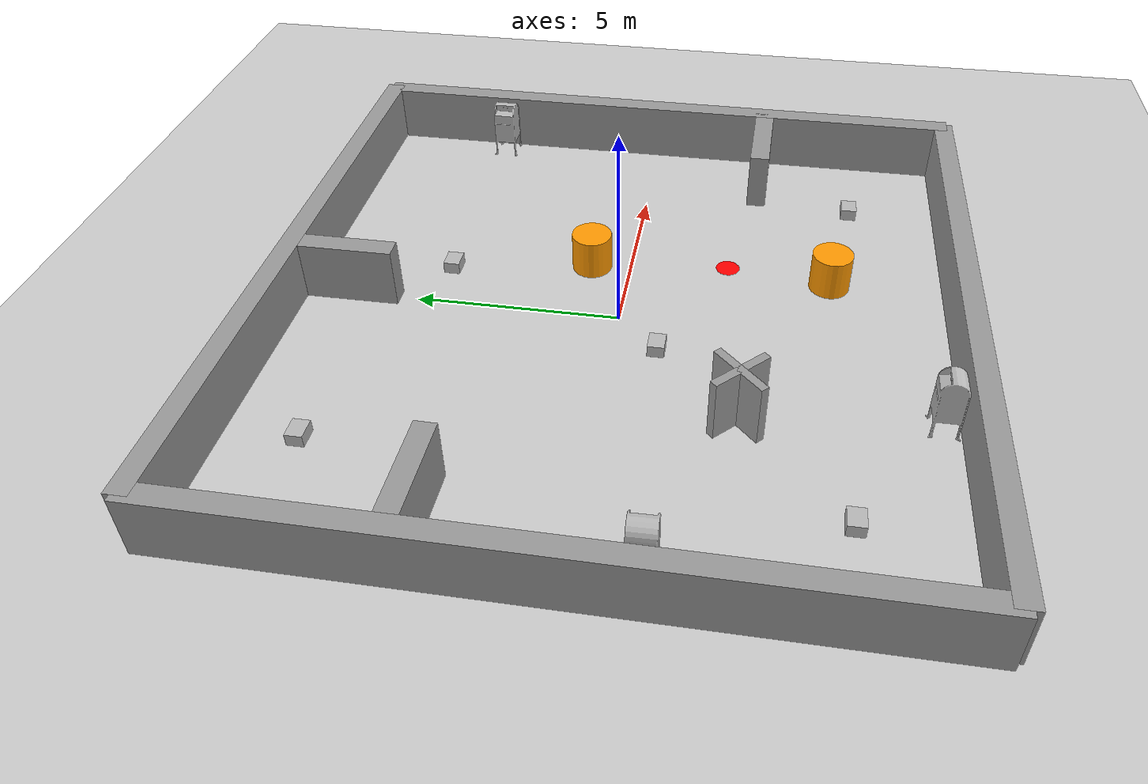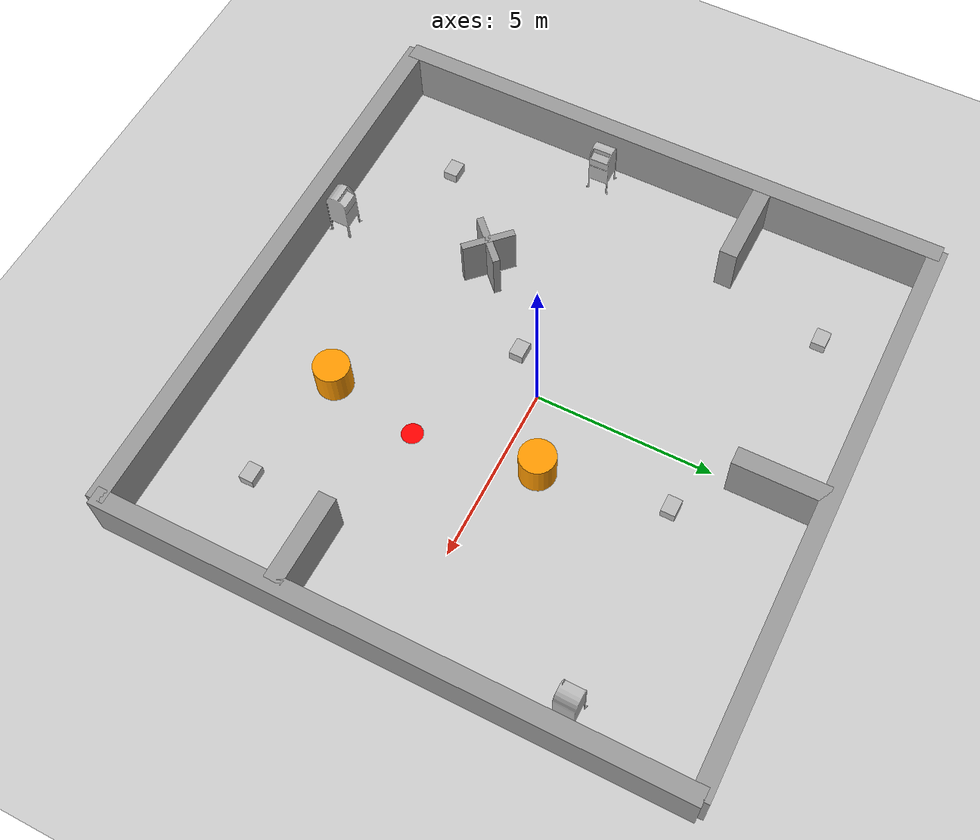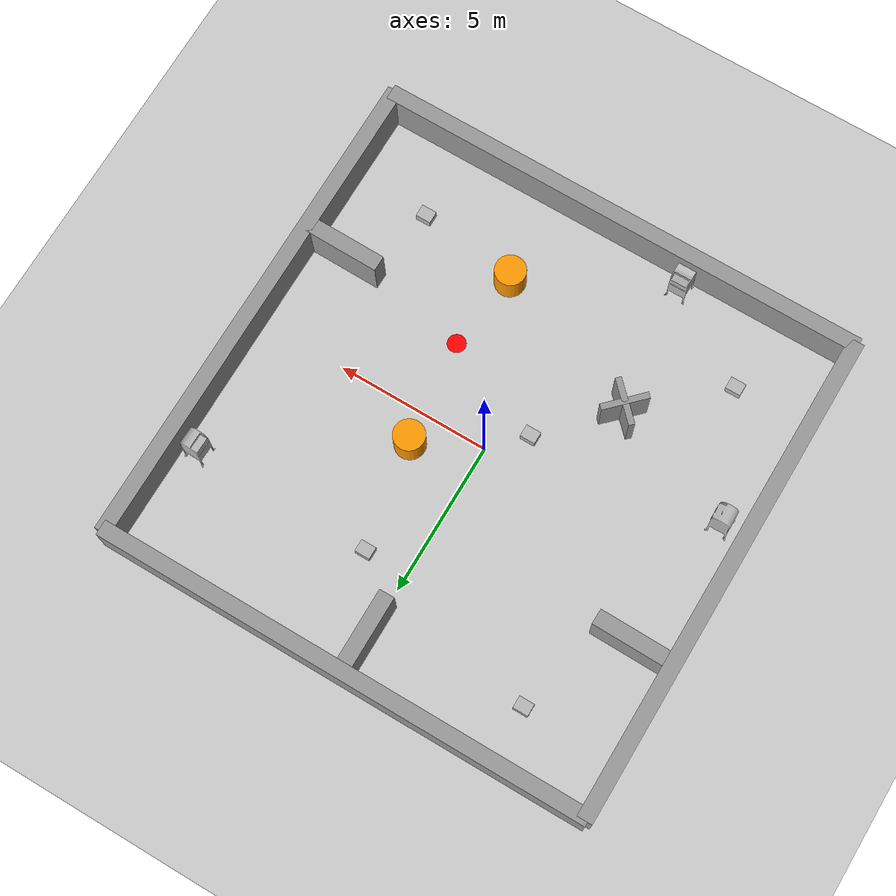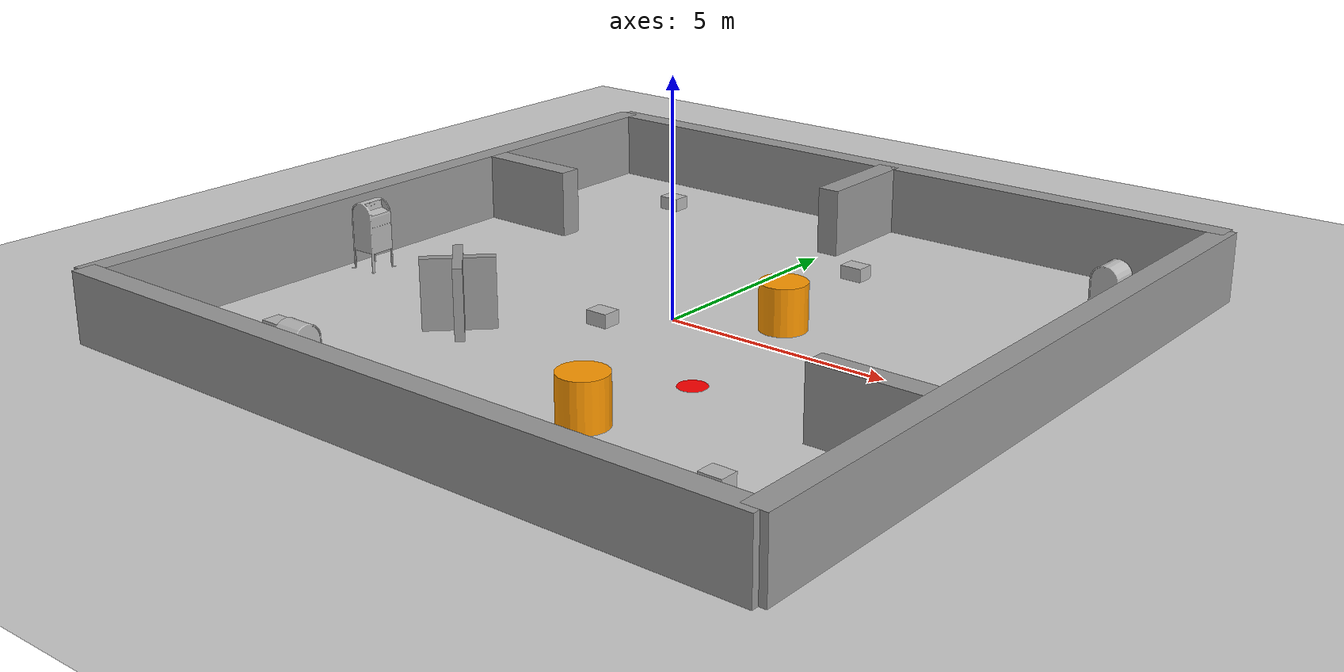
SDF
<sdf version="1.7">
 <world name="default">
  <light name="sun" type="directional">
   <pose>0 0 10 0 -0 0</pose>
   <diffuse>0.8 0.8 0.8 1</diffuse>
   <specular>0.2 0.2 0.2 1</specular>
   <attenuation>
    <range>1000</range>
    <constant>0.9</constant>
    <linear>0.01</linear>
    <quadratic>0.001</quadratic>
   </attenuation>
   <direction>-0.5 0.1 -0.9</direction>
   <spot><inner_angle>0</inner_angle><outer_angle>0</outer_angle><falloff>0</falloff></spot>
  </light>
  <model name="ground_plane">
   <static>1</static>
   <link name="link">
    <collision name="collision">
     <geometry><plane><normal>0 0 1</normal><size>100 100</size></plane></geometry>
     <surface>
      <contact><collide_bitmask>65535</collide_bitmask></contact>
      <friction><ode><mu>100</mu><mu2>50</mu2></ode></friction>
     </surface>
    </collision>
    <visual name="visual">
     <cast_shadows>0</cast_shadows>
     <geometry><plane><normal>0 0 1</normal><size>100 100</size></plane></geometry>
     <material>
      <script><uri>file://media/materials/scripts/gazebo.material</uri><name>Gazebo/Grey</name></script>
     </material>
    </visual>
   </link>
  </model>
  <gravity>0 0 -9.8</gravity>
  <magnetic_field>6e-06 2.3e-05 -4.2e-05</magnetic_field>
  <atmosphere type="adiabatic"/>
  <physics type="ode">
   <max_step_size>0.001</max_step_size>
   <real_time_factor>1</real_time_factor>
   <real_time_update_rate>10000</real_time_update_rate>
  </physics>
  <scene><ambient>0.4 0.4 0.4 1</ambient><background>0.7 0.7 0.7 1</background><shadows>1</shadows></scene>
  <spherical_coordinates>
   <surface_model>EARTH_WGS84</surface_model>
   <latitude_deg>0</latitude_deg>
   <longitude_deg>0</longitude_deg>
   <elevation>0</elevation>
   <heading_deg>0</heading_deg>
  </spherical_coordinates>
  <model name="cardboard_box_0">
   <link name="link">
    <inertial>
     <mass>2</mass>
     <inertia>
      <ixx>0.0416667</ixx>
      <ixy>0</ixy>
      <ixz>0</ixz>
      <iyy>0.0566667</iyy>
      <iyz>0</iyz>
      <izz>0.0683333</izz>
     </inertia>
    </inertial>
    <visual name="visual">
     <pose>0 0 -0.15 0 -0 0</pose>
     <geometry>
      <mesh><uri>model://cardboard_box/meshes/cardboard_box.dae</uri><scale>1.25932 1.00745 0.755591</scale></mesh>
     </geometry>
     <material><shader type="pixel"><normal_map>__default__</normal_map></shader></material>
    </visual>
    <collision name="collision">
     <geometry><box><size>0.5 0.4 0.3</size></box></geometry>
     <surface>
      <friction>
       <ode><mu>1</mu><mu2>1</mu2><fdir1>0 0 0</fdir1><slip1>0</slip1><slip2>0</slip2></ode>
       <torsional>
        <coefficient>1</coefficient>
        <patch_radius>0</patch_radius>
        <surface_radius>0</surface_radius>
        <use_patch_radius>1</use_patch_radius>
        <ode><slip>0</slip></ode>
       </torsional>
      </friction>
      <bounce><restitution_coefficient>0</restitution_coefficient><threshold>1e+06</threshold></bounce>
      <contact>
       <collide_without_contact>0</collide_without_contact>
       <collide_without_contact_bitmask>1</collide_without_contact_bitmask>
       <collide_bitmask>1</collide_bitmask>
       <ode>
        <soft_cfm>0</soft_cfm>
        <soft_erp>0.2</soft_erp>
        <kp>1e+07</kp>
        <kd>1</kd>
        <max_vel>0.1</max_vel>
        <min_depth>0.001</min_depth>
       </ode>
       <bullet>
        <split_impulse>1</split_impulse>
        <split_impulse_penetration_threshold>-0.01</split_impulse_penetration_threshold>
        <soft_cfm>0</soft_cfm>
        <soft_erp>0.2</soft_erp>
        <kp>1e+07</kp>
        <kd>1</kd>
       </bullet>
      </contact>
     </surface>
    </collision>
   </link>
   <static>0</static>
   <pose>-5.5252 -5.46607 0.149 0 -0 0</pose>
  </model>
  <model name="cardboard_box_1">
   <link name="link">
    <inertial>
     <mass>2</mass>
     <inertia>
      <ixx>0.0416667</ixx>
      <ixy>0</ixy>
      <ixz>0</ixz>
      <iyy>0.0566667</iyy>
      <iyz>0</iyz>
      <izz>0.0683333</izz>
     </inertia>
    </inertial>
    <visual name="visual">
     <pose>0 0 -0.15 0 -0 0</pose>
     <geometry>
      <mesh><uri>model://cardboard_box/meshes/cardboard_box.dae</uri><scale>1.25932 1.00745 0.755591</scale></mesh>
     </geometry>
     <material><shader type="pixel"><normal_map>__default__</normal_map></shader></material>
    </visual>
    <collision name="collision">
     <geometry><box><size>0.5 0.4 0.3</size></box></geometry>
     <surface>
      <friction>
       <ode><mu>1</mu><mu2>1</mu2><fdir1>0 0 0</fdir1><slip1>0</slip1><slip2>0</slip2></ode>
       <torsional>
        <coefficient>1</coefficient>
        <patch_radius>0</patch_radius>
        <surface_radius>0</surface_radius>
        <use_patch_radius>1</use_patch_radius>
        <ode><slip>0</slip></ode>
       </torsional>
      </friction>
      <bounce><restitution_coefficient>0</restitution_coefficient><threshold>1e+06</threshold></bounce>
      <contact>
       <collide_without_contact>0</collide_without_contact>
       <collide_without_contact_bitmask>1</collide_without_contact_bitmask>
       <collide_bitmask>1</collide_bitmask>
       <ode>
        <soft_cfm>0</soft_cfm>
        <soft_erp>0.2</soft_erp>
        <kp>1e+07</kp>
        <kd>1</kd>
        <max_vel>0.1</max_vel>
        <min_depth>0.001</min_depth>
       </ode>
       <bullet>
        <split_impulse>1</split_impulse>
        <split_impulse_penetration_threshold>-0.01</split_impulse_penetration_threshold>
        <soft_cfm>0</soft_cfm>
        <soft_erp>0.2</soft_erp>
        <kp>1e+07</kp>
        <kd>1</kd>
       </bullet>
      </contact>
     </surface>
    </collision>
   </link>
   <static>0</static>
   <pose>-4.89749 6.07593 0.149 0 -0 0</pose>
  </model>
  <model name="cardboard_box_2">
   <link name="link">
    <inertial>
     <mass>2</mass>
     <inertia>
      <ixx>0.0416667</ixx>
      <ixy>0</ixy>
      <ixz>0</ixz>
      <iyy>0.0566667</iyy>
      <iyz>0</iyz>
      <izz>0.0683333</izz>
     </inertia>
    </inertial>
    <visual name="visual">
     <pose>0 0 -0.15 0 -0 0</pose>
     <geometry>
      <mesh><uri>model://cardboard_box/meshes/cardboard_box.dae</uri><scale>1.25932 1.00745 0.755591</scale></mesh>
     </geometry>
     <material><shader type="pixel"><normal_map>__default__</normal_map></shader></material>
    </visual>
    <collision name="collision">
     <geometry><box><size>0.5 0.4 0.3</size></box></geometry>
     <surface>
      <friction>
       <ode><mu>1</mu><mu2>1</mu2><fdir1>0 0 0</fdir1><slip1>0</slip1><slip2>0</slip2></ode>
       <torsional>
        <coefficient>1</coefficient>
        <patch_radius>0</patch_radius>
        <surface_radius>0</surface_radius>
        <use_patch_radius>1</use_patch_radius>
        <ode><slip>0</slip></ode>
       </torsional>
      </friction>
      <bounce><restitution_coefficient>0</restitution_coefficient><threshold>1e+06</threshold></bounce>
      <contact>
       <collide_without_contact>0</collide_without_contact>
       <collide_without_contact_bitmask>1</collide_without_contact_bitmask>
       <collide_bitmask>1</collide_bitmask>
       <ode>
        <soft_cfm>0</soft_cfm>
        <soft_erp>0.2</soft_erp>
        <kp>1e+07</kp>
        <kd>1</kd>
        <max_vel>0.1</max_vel>
        <min_depth>0.001</min_depth>
       </ode>
       <bullet>
        <split_impulse>1</split_impulse>
        <split_impulse_penetration_threshold>-0.01</split_impulse_penetration_threshold>
        <soft_cfm>0</soft_cfm>
        <soft_erp>0.2</soft_erp>
        <kp>1e+07</kp>
        <kd>1</kd>
       </bullet>
      </contact>
     </surface>
    </collision>
   </link>
   <static>0</static>
   <pose>1.41387 4.4783 0.149 0 -0 0</pose>
  </model>
  <model name="cardboard_box_3">
   <link name="link">
    <inertial>
     <mass>2</mass>
     <inertia>
      <ixx>0.0416667</ixx>
      <ixy>0</ixy>
      <ixz>0</ixz>
      <iyy>0.0566667</iyy>
      <iyz>0</iyz>
      <izz>0.0683333</izz>
     </inertia>
    </inertial>
    <visual name="visual">
     <pose>0 0 -0.15 0 -0 0</pose>
     <geometry>
      <mesh><uri>model://cardboard_box/meshes/cardboard_box.dae</uri><scale>1.25932 1.00745 0.755591</scale></mesh>
     </geometry>
     <material><shader type="pixel"><normal_map>__default__</normal_map></shader></material>
    </visual>
    <collision name="collision">
     <geometry><box><size>0.5 0.4 0.3</size></box></geometry>
     <surface>
      <friction>
       <ode><mu>1</mu><mu2>1</mu2><fdir1>0 0 0</fdir1><slip1>0</slip1><slip2>0</slip2></ode>
       <torsional>
        <coefficient>1</coefficient>
        <patch_radius>0</patch_radius>
        <surface_radius>0</surface_radius>
        <use_patch_radius>1</use_patch_radius>
        <ode><slip>0</slip></ode>
       </torsional>
      </friction>
      <bounce><restitution_coefficient>0</restitution_coefficient><threshold>1e+06</threshold></bounce>
      <contact>
       <collide_without_contact>0</collide_without_contact>
       <collide_without_contact_bitmask>1</collide_without_contact_bitmask>
       <collide_bitmask>1</collide_bitmask>
       <ode>
        <soft_cfm>0</soft_cfm>
        <soft_erp>0.2</soft_erp>
        <kp>1e+07</kp>
        <kd>1</kd>
        <max_vel>0.1</max_vel>
        <min_depth>0.001</min_depth>
       </ode>
       <bullet>
        <split_impulse>1</split_impulse>
        <split_impulse_penetration_threshold>-0.01</split_impulse_penetration_threshold>
        <soft_cfm>0</soft_cfm>
        <soft_erp>0.2</soft_erp>
        <kp>1e+07</kp>
        <kd>1</kd>
       </bullet>
      </contact>
     </surface>
    </collision>
   </link>
   <static>0</static>
   <pose>5.36107 -5.49547 0.149 0 -0 0</pose>
  </model>
  <model name="cardboard_box_4">
   <link name="link">
    <inertial>
     <mass>2</mass>
     <inertia>
      <ixx>0.0416667</ixx>
      <ixy>0</ixy>
      <ixz>0</ixz>
      <iyy>0.0566667</iyy>
      <iyz>0</iyz>
      <izz>0.0683333</izz>
     </inertia>
    </inertial>
    <visual name="visual">
     <pose>0 0 -0.15 0 -0 0</pose>
     <geometry>
      <mesh><uri>model://cardboard_box/meshes/cardboard_box.dae</uri><scale>1.25932 1.00745 0.755591</scale></mesh>
     </geometry>
     <material><shader type="pixel"><normal_map>__default__</normal_map></shader></material>
    </visual>
    <collision name="collision">
     <geometry><box><size>0.5 0.4 0.3</size></box></geometry>
     <surface>
      <friction>
       <ode><mu>1</mu><mu2>1</mu2><fdir1>0 0 0</fdir1><slip1>0</slip1><slip2>0</slip2></ode>
       <torsional>
        <coefficient>1</coefficient>
        <patch_radius>0</patch_radius>
        <surface_radius>0</surface_radius>
        <use_patch_radius>1</use_patch_radius>
        <ode><slip>0</slip></ode>
       </torsional>
      </friction>
      <bounce><restitution_coefficient>0</restitution_coefficient><threshold>1e+06</threshold></bounce>
      <contact>
       <collide_without_contact>0</collide_without_contact>
       <collide_without_contact_bitmask>1</collide_without_contact_bitmask>
       <collide_bitmask>1</collide_bitmask>
       <ode>
        <soft_cfm>0</soft_cfm>
        <soft_erp>0.2</soft_erp>
        <kp>1e+07</kp>
        <kd>1</kd>
        <max_vel>0.1</max_vel>
        <min_depth>0.001</min_depth>
       </ode>
       <bullet>
        <split_impulse>1</split_impulse>
        <split_impulse_penetration_threshold>-0.01</split_impulse_penetration_threshold>
        <soft_cfm>0</soft_cfm>
        <soft_erp>0.2</soft_erp>
        <kp>1e+07</kp>
        <kd>1</kd>
       </bullet>
      </contact>
     </surface>
    </collision>
   </link>
   <static>0</static>
   <pose>-0.980293 -1.02482 0.149 0 -0 0</pose>
  </model>
  <model name="goal_flag_box">
   <link name="link_0">
    <inertial>
     <mass>7854.22</mass>
     <inertia><ixx>1145.41</ixx><ixy>0</ixy><ixz>0</ixz><iyy>1145.41</iyy><iyz>0</iyz><izz>981.777</izz></inertia>
    </inertial>
    <pose>-0 -0 -0.495 0 -0 0</pose>
    <visual name="visual">
     <geometry><cylinder><radius>0.3</radius><length>0.0001</length></cylinder></geometry>
     <material>
      <lighting>1</lighting>
      <script><uri>file://media/materials/scripts/gazebo.material</uri><name>Gazebo/Grey</name></script>
      <shader type="pixel"><normal_map>__default__</normal_map></shader>
      <ambient>1 0 0 1</ambient>
      <diffuse>0.7 0.7 0.7 1</diffuse>
      <specular>0.01 0.01 0.01 1</specular>
      <emissive>0 0 0 1</emissive>
     </material>
    </visual>
    <collision name="collision">
     <geometry><cylinder><radius>0.3</radius><length>0.0001</length></cylinder></geometry>
     <surface>
      <friction>
       <ode><mu>1</mu><mu2>1</mu2><fdir1>0 0 0</fdir1><slip1>0</slip1><slip2>0</slip2></ode>
       <torsional>
        <coefficient>1</coefficient>
        <patch_radius>0</patch_radius>
        <surface_radius>0</surface_radius>
        <use_patch_radius>1</use_patch_radius>
        <ode><slip>0</slip></ode>
       </torsional>
      </friction>
      <bounce><restitution_coefficient>0</restitution_coefficient><threshold>1e+06</threshold></bounce>
      <contact>
       <collide_without_contact>0</collide_without_contact>
       <collide_without_contact_bitmask>1</collide_without_contact_bitmask>
       <collide_bitmask>1</collide_bitmask>
       <ode>
        <soft_cfm>0</soft_cfm>
        <soft_erp>0.2</soft_erp>
        <kp>1e+13</kp>
        <kd>1</kd>
        <max_vel>0.01</max_vel>
        <min_depth>0</min_depth>
       </ode>
       <bullet>
        <split_impulse>1</split_impulse>
        <split_impulse_penetration_threshold>-0.01</split_impulse_penetration_threshold>
        <soft_cfm>0</soft_cfm>
        <soft_erp>0.2</soft_erp>
        <kp>1e+13</kp>
        <kd>1</kd>
       </bullet>
      </contact>
     </surface>
    </collision>
   </link>
   <static>0</static>
   <pose>2.43527 -2.43514 0.49505 -0 -0 -0</pose>
  </model>
  <model name="grey_wall_mine_simple_4">
   <link name="link">
    <pose>0 0 0.75 0 -0 0</pose>
    <inertial>
     <mass>1</mass>
     <inertia><ixx>1</ixx><ixy>0</ixy><ixz>0</ixz><iyy>1</iyy><iyz>0</iyz><izz>1</izz></inertia>
    </inertial>
    <visual name="visual">
     <cast_shadows>0</cast_shadows>
     <geometry><box><size>16.2 0.5 1.5</size></box></geometry>
     <material>
      <script>
       <uri>model://grey_wall/materials/scripts</uri>
       <uri>model://grey_wall/materials/textures</uri>
       <name>vrc/grey_wall</name>
      </script>
      <shader type="pixel"><normal_map>__default__</normal_map></shader>
      <ambient>1 1 1 1</ambient>
      <diffuse>1 1 1 1</diffuse>
      <specular>0 0 0 1</specular>
      <emissive>0 0 0 1</emissive>
     </material>
    </visual>
    <collision name="collision">
     <geometry><box><size>16.2 0.5 1.5</size></box></geometry>
     <surface>
      <friction>
       <ode><mu>1</mu><mu2>1</mu2><fdir1>0 0 0</fdir1><slip1>0</slip1><slip2>0</slip2></ode>
       <torsional>
        <coefficient>1</coefficient>
        <patch_radius>0</patch_radius>
        <surface_radius>0</surface_radius>
        <use_patch_radius>1</use_patch_radius>
        <ode><slip>0</slip></ode>
       </torsional>
      </friction>
      <bounce><restitution_coefficient>0</restitution_coefficient><threshold>1e+06</threshold></bounce>
      <contact>
       <collide_without_contact>0</collide_without_contact>
       <collide_without_contact_bitmask>1</collide_without_contact_bitmask>
       <collide_bitmask>1</collide_bitmask>
       <ode>
        <soft_cfm>0</soft_cfm>
        <soft_erp>0.2</soft_erp>
        <kp>1e+13</kp>
        <kd>1</kd>
        <max_vel>0.01</max_vel>
        <min_depth>0</min_depth>
       </ode>
       <bullet>
        <split_impulse>1</split_impulse>
        <split_impulse_penetration_threshold>-0.01</split_impulse_penetration_threshold>
        <soft_cfm>0</soft_cfm>
        <soft_erp>0.2</soft_erp>
        <kp>1e+13</kp>
        <kd>1</kd>
       </bullet>
      </contact>
     </surface>
    </collision>
   </link>
   <link name="link_0_clone">
    <inertial>
     <mass>1</mass>
     <inertia><ixx>0.145833</ixx><ixy>0</ixy><ixz>0</ixz><iyy>0.145833</iyy><iyz>0</iyz><izz>0.125</izz></inertia>
    </inertial>
    <pose>2 -7 0.5 0 -0 0</pose>
    <visual name="visual">
     <geometry><cylinder><radius>0.5</radius><length>1</length></cylinder></geometry>
     <material>
      <lighting>1</lighting>
      <script><uri>file://media/materials/scripts/gazebo.material</uri><name>Gazebo/Grey</name></script>
      <shader type="pixel"><normal_map>__default__</normal_map></shader>
      <ambient>1 0.6 0 1</ambient>
      <diffuse>0.7 0.7 0.7 1</diffuse>
      <specular>0.01 0.01 0.01 1</specular>
      <emissive>0 0 0 1</emissive>
     </material>
    </visual>
    <collision name="collision">
     <geometry><cylinder><radius>0.5</radius><length>1</length></cylinder></geometry>
     <surface>
      <friction>
       <ode><mu>1</mu><mu2>1</mu2><fdir1>0 0 0</fdir1><slip1>0</slip1><slip2>0</slip2></ode>
       <torsional>
        <coefficient>1</coefficient>
        <patch_radius>0</patch_radius>
        <surface_radius>0</surface_radius>
        <use_patch_radius>1</use_patch_radius>
        <ode><slip>0</slip></ode>
       </torsional>
      </friction>
      <bounce><restitution_coefficient>0</restitution_coefficient><threshold>1e+06</threshold></bounce>
      <contact>
       <collide_without_contact>0</collide_without_contact>
       <collide_without_contact_bitmask>1</collide_without_contact_bitmask>
       <collide_bitmask>1</collide_bitmask>
       <ode>
        <soft_cfm>0</soft_cfm>
        <soft_erp>0.2</soft_erp>
        <kp>1e+13</kp>
        <kd>1</kd>
        <max_vel>0.01</max_vel>
        <min_depth>0</min_depth>
       </ode>
       <bullet>
        <split_impulse>1</split_impulse>
        <split_impulse_penetration_threshold>-0.01</split_impulse_penetration_threshold>
        <soft_cfm>0</soft_cfm>
        <soft_erp>0.2</soft_erp>
        <kp>1e+13</kp>
        <kd>1</kd>
       </bullet>
      </contact>
     </surface>
    </collision>
   </link>
   <link name="link_0_clone_clone">
    <inertial>
     <mass>1</mass>
     <inertia><ixx>0.145833</ixx><ixy>0</ixy><ixz>0</ixz><iyy>0.145833</iyy><iyz>0</iyz><izz>0.125</izz></inertia>
    </inertial>
    <pose>2.05234 -12.9817 0.5 0 -0 0</pose>
    <visual name="visual">
     <geometry><cylinder><radius>0.5</radius><length>1</length></cylinder></geometry>
     <material>
      <lighting>1</lighting>
      <script><uri>file://media/materials/scripts/gazebo.material</uri><name>Gazebo/Grey</name></script>
      <shader type="pixel"><normal_map>__default__</normal_map></shader>
      <ambient>1 0.6 0 1</ambient>
      <diffuse>0.7 0.7 0.7 1</diffuse>
      <specular>0.01 0.01 0.01 1</specular>
      <emissive>0 0 0 1</emissive>
     </material>
    </visual>
    <collision name="collision">
     <geometry><cylinder><radius>0.5</radius><length>1</length></cylinder></geometry>
     <surface>
      <friction>
       <ode><mu>1</mu><mu2>1</mu2><fdir1>0 0 0</fdir1><slip1>0</slip1><slip2>0</slip2></ode>
       <torsional>
        <coefficient>1</coefficient>
        <patch_radius>0</patch_radius>
        <surface_radius>0</surface_radius>
        <use_patch_radius>1</use_patch_radius>
        <ode><slip>0</slip></ode>
       </torsional>
      </friction>
      <bounce><restitution_coefficient>0</restitution_coefficient><threshold>1e+06</threshold></bounce>
      <contact>
       <collide_without_contact>0</collide_without_contact>
       <collide_without_contact_bitmask>1</collide_without_contact_bitmask>
       <collide_bitmask>1</collide_bitmask>
       <ode>
        <soft_cfm>0</soft_cfm>
        <soft_erp>0.2</soft_erp>
        <kp>1e+13</kp>
        <kd>1</kd>
        <max_vel>0.01</max_vel>
        <min_depth>0</min_depth>
       </ode>
       <bullet>
        <split_impulse>1</split_impulse>
        <split_impulse_penetration_threshold>-0.01</split_impulse_penetration_threshold>
        <soft_cfm>0</soft_cfm>
        <soft_erp>0.2</soft_erp>
        <kp>1e+13</kp>
        <kd>1</kd>
       </bullet>
      </contact>
     </surface>
    </collision>
   </link>
   <link name="link_clone">
    <pose>0 -16 0.75 0 -0 0</pose>
    <inertial>
     <mass>1</mass>
     <inertia><ixx>1</ixx><ixy>0</ixy><ixz>0</ixz><iyy>1</iyy><iyz>0</iyz><izz>1</izz></inertia>
    </inertial>
    <visual name="visual">
     <cast_shadows>0</cast_shadows>
     <geometry><box><size>16.2 0.5 1.5</size></box></geometry>
     <material>
      <script>
       <uri>model://grey_wall/materials/scripts</uri>
       <uri>model://grey_wall/materials/textures</uri>
       <name>vrc/grey_wall</name>
      </script>
      <shader type="pixel"><normal_map>__default__</normal_map></shader>
      <ambient>1 1 1 1</ambient>
      <diffuse>1 1 1 1</diffuse>
      <specular>0 0 0 1</specular>
      <emissive>0 0 0 1</emissive>
     </material>
    </visual>
    <collision name="collision">
     <geometry><box><size>16.2 0.5 1.5</size></box></geometry>
     <surface>
      <friction>
       <ode><mu>1</mu><mu2>1</mu2><fdir1>0 0 0</fdir1><slip1>0</slip1><slip2>0</slip2></ode>
       <torsional>
        <coefficient>1</coefficient>
        <patch_radius>0</patch_radius>
        <surface_radius>0</surface_radius>
        <use_patch_radius>1</use_patch_radius>
        <ode><slip>0</slip></ode>
       </torsional>
      </friction>
      <bounce><restitution_coefficient>0</restitution_coefficient><threshold>1e+06</threshold></bounce>
      <contact>
       <collide_without_contact>0</collide_without_contact>
       <collide_without_contact_bitmask>1</collide_without_contact_bitmask>
       <collide_bitmask>1</collide_bitmask>
       <ode>
        <soft_cfm>0</soft_cfm>
        <soft_erp>0.2</soft_erp>
        <kp>1e+13</kp>
        <kd>1</kd>
        <max_vel>0.01</max_vel>
        <min_depth>0</min_depth>
       </ode>
       <bullet>
        <split_impulse>1</split_impulse>
        <split_impulse_penetration_threshold>-0.01</split_impulse_penetration_threshold>
        <soft_cfm>0</soft_cfm>
        <soft_erp>0.2</soft_erp>
        <kp>1e+13</kp>
        <kd>1</kd>
       </bullet>
      </contact>
     </surface>
    </collision>
   </link>
   <link name="link_clone_0">
    <pose>-8 -8 0.75 0 -0 1.5708</pose>
    <inertial>
     <mass>1</mass>
     <inertia><ixx>1</ixx><ixy>0</ixy><ixz>0</ixz><iyy>1</iyy><iyz>0</iyz><izz>1</izz></inertia>
    </inertial>
    <visual name="visual">
     <cast_shadows>0</cast_shadows>
     <geometry><box><size>16.2 0.5 1.5</size></box></geometry>
     <material>
      <script>
       <uri>model://grey_wall/materials/scripts</uri>
       <uri>model://grey_wall/materials/textures</uri>
       <name>vrc/grey_wall</name>
      </script>
      <shader type="pixel"><normal_map>__default__</normal_map></shader>
      <ambient>1 1 1 1</ambient>
      <diffuse>1 1 1 1</diffuse>
      <specular>0 0 0 1</specular>
      <emissive>0 0 0 1</emissive>
     </material>
    </visual>
    <collision name="collision">
     <geometry><box><size>16.2 0.5 1.5</size></box></geometry>
     <surface>
      <friction>
       <ode><mu>1</mu><mu2>1</mu2><fdir1>0 0 0</fdir1><slip1>0</slip1><slip2>0</slip2></ode>
       <torsional>
        <coefficient>1</coefficient>
        <patch_radius>0</patch_radius>
        <surface_radius>0</surface_radius>
        <use_patch_radius>1</use_patch_radius>
        <ode><slip>0</slip></ode>
       </torsional>
      </friction>
      <bounce><restitution_coefficient>0</restitution_coefficient><threshold>1e+06</threshold></bounce>
      <contact>
       <collide_without_contact>0</collide_without_contact>
       <collide_without_contact_bitmask>1</collide_without_contact_bitmask>
       <collide_bitmask>1</collide_bitmask>
       <ode>
        <soft_cfm>0</soft_cfm>
        <soft_erp>0.2</soft_erp>
        <kp>1e+13</kp>
        <kd>1</kd>
        <max_vel>0.01</max_vel>
        <min_depth>0</min_depth>
       </ode>
       <bullet>
        <split_impulse>1</split_impulse>
        <split_impulse_penetration_threshold>-0.01</split_impulse_penetration_threshold>
        <soft_cfm>0</soft_cfm>
        <soft_erp>0.2</soft_erp>
        <kp>1e+13</kp>
        <kd>1</kd>
       </bullet>
      </contact>
     </surface>
    </collision>
   </link>
   <link name="link_clone_0_clone">
    <pose>8 -8 0.75 0 -0 1.5708</pose>
    <inertial>
     <mass>1</mass>
     <inertia><ixx>1</ixx><ixy>0</ixy><ixz>0</ixz><iyy>1</iyy><iyz>0</iyz><izz>1</izz></inertia>
    </inertial>
    <visual name="visual">
     <cast_shadows>0</cast_shadows>
     <geometry><box><size>16.2 0.5 1.5</size></box></geometry>
     <material>
      <script>
       <uri>model://grey_wall/materials/scripts</uri>
       <uri>model://grey_wall/materials/textures</uri>
       <name>vrc/grey_wall</name>
      </script>
      <shader type="pixel"><normal_map>__default__</normal_map></shader>
      <ambient>1 1 1 1</ambient>
      <diffuse>1 1 1 1</diffuse>
      <specular>0 0 0 1</specular>
      <emissive>0 0 0 1</emissive>
     </material>
    </visual>
    <collision name="collision">
     <geometry><box><size>16.2 0.5 1.5</size></box></geometry>
     <surface>
      <friction>
       <ode><mu>1</mu><mu2>1</mu2><fdir1>0 0 0</fdir1><slip1>0</slip1><slip2>0</slip2></ode>
       <torsional>
        <coefficient>1</coefficient>
        <patch_radius>0</patch_radius>
        <surface_radius>0</surface_radius>
        <use_patch_radius>1</use_patch_radius>
        <ode><slip>0</slip></ode>
       </torsional>
      </friction>
      <bounce><restitution_coefficient>0</restitution_coefficient><threshold>1e+06</threshold></bounce>
      <contact>
       <collide_without_contact>0</collide_without_contact>
       <collide_without_contact_bitmask>1</collide_without_contact_bitmask>
       <collide_bitmask>1</collide_bitmask>
       <ode>
        <soft_cfm>0</soft_cfm>
        <soft_erp>0.2</soft_erp>
        <kp>1e+13</kp>
        <kd>1</kd>
        <max_vel>0.01</max_vel>
        <min_depth>0</min_depth>
       </ode>
       <bullet>
        <split_impulse>1</split_impulse>
        <split_impulse_penetration_threshold>-0.01</split_impulse_penetration_threshold>
        <soft_cfm>0</soft_cfm>
        <soft_erp>0.2</soft_erp>
        <kp>1e+13</kp>
        <kd>1</kd>
       </bullet>
      </contact>
     </surface>
    </collision>
   </link>
   <link name="link_clone_1_clone_clone_clone">
    <pose>-3 -11 0.75 0 -0 2.3562</pose>
    <inertial>
     <mass>1</mass>
     <inertia><ixx>1</ixx><ixy>0</ixy><ixz>0</ixz><iyy>1</iyy><iyz>0</iyz><izz>1</izz></inertia>
    </inertial>
    <visual name="visual">
     <cast_shadows>0</cast_shadows>
     <geometry><box><size>1.5 0.2 1.5</size></box></geometry>
     <material>
      <script>
       <uri>model://grey_wall/materials/scripts</uri>
       <uri>model://grey_wall/materials/textures</uri>
       <name>vrc/grey_wall</name>
      </script>
      <shader type="pixel"><normal_map>__default__</normal_map></shader>
      <ambient>1 1 1 1</ambient>
      <diffuse>1 1 1 1</diffuse>
      <specular>0 0 0 1</specular>
      <emissive>0 0 0 1</emissive>
     </material>
    </visual>
    <collision name="collision">
     <geometry><box><size>1.5 0.2 1.5</size></box></geometry>
     <surface>
      <friction>
       <ode><mu>1</mu><mu2>1</mu2><fdir1>0 0 0</fdir1><slip1>0</slip1><slip2>0</slip2></ode>
       <torsional>
        <coefficient>1</coefficient>
        <patch_radius>0</patch_radius>
        <surface_radius>0</surface_radius>
        <use_patch_radius>1</use_patch_radius>
        <ode><slip>0</slip></ode>
       </torsional>
      </friction>
      <bounce><restitution_coefficient>0</restitution_coefficient><threshold>1e+06</threshold></bounce>
      <contact>
       <collide_without_contact>0</collide_without_contact>
       <collide_without_contact_bitmask>1</collide_without_contact_bitmask>
       <collide_bitmask>1</collide_bitmask>
       <ode>
        <soft_cfm>0</soft_cfm>
        <soft_erp>0.2</soft_erp>
        <kp>1e+13</kp>
        <kd>1</kd>
        <max_vel>0.01</max_vel>
        <min_depth>0</min_depth>
       </ode>
       <bullet>
        <split_impulse>1</split_impulse>
        <split_impulse_penetration_threshold>-0.01</split_impulse_penetration_threshold>
        <soft_cfm>0</soft_cfm>
        <soft_erp>0.2</soft_erp>
        <kp>1e+13</kp>
        <kd>1</kd>
       </bullet>
      </contact>
     </surface>
    </collision>
   </link>
   <link name="link_clone_1_clone_clone_clone_clone">
    <pose>-3 -11 0.75 0 -0 0.785404</pose>
    <inertial>
     <mass>1</mass>
     <inertia><ixx>1</ixx><ixy>0</ixy><ixz>0</ixz><iyy>1</iyy><iyz>0</iyz><izz>1</izz></inertia>
    </inertial>
    <visual name="visual">
     <cast_shadows>0</cast_shadows>
     <geometry><box><size>1.5 0.2 1.5</size></box></geometry>
     <material>
      <script>
       <uri>model://grey_wall/materials/scripts</uri>
       <uri>model://grey_wall/materials/textures</uri>
       <name>vrc/grey_wall</name>
      </script>
      <shader type="pixel"><normal_map>__default__</normal_map></shader>
      <ambient>1 1 1 1</ambient>
      <diffuse>1 1 1 1</diffuse>
      <specular>0 0 0 1</specular>
      <emissive>0 0 0 1</emissive>
     </material>
    </visual>
    <collision name="collision">
     <geometry><box><size>1.5 0.2 1.5</size></box></geometry>
     <surface>
      <friction>
       <ode><mu>1</mu><mu2>1</mu2><fdir1>0 0 0</fdir1><slip1>0</slip1><slip2>0</slip2></ode>
       <torsional>
        <coefficient>1</coefficient>
        <patch_radius>0</patch_radius>
        <surface_radius>0</surface_radius>
        <use_patch_radius>1</use_patch_radius>
        <ode><slip>0</slip></ode>
       </torsional>
      </friction>
      <bounce><restitution_coefficient>0</restitution_coefficient><threshold>1e+06</threshold></bounce>
      <contact>
       <collide_without_contact>0</collide_without_contact>
       <collide_without_contact_bitmask>1</collide_without_contact_bitmask>
       <collide_bitmask>1</collide_bitmask>
       <ode>
        <soft_cfm>0</soft_cfm>
        <soft_erp>0.2</soft_erp>
        <kp>1e+13</kp>
        <kd>1</kd>
        <max_vel>0.01</max_vel>
        <min_depth>0</min_depth>
       </ode>
       <bullet>
        <split_impulse>1</split_impulse>
        <split_impulse_penetration_threshold>-0.01</split_impulse_penetration_threshold>
        <soft_cfm>0</soft_cfm>
        <soft_erp>0.2</soft_erp>
        <kp>1e+13</kp>
        <kd>1</kd>
       </bullet>
      </contact>
     </surface>
    </collision>
   </link>
   <link name="link_clone_1_clone_clone_clone_clone_clone">
    <pose>-6.7 -5 0.75 0 -0 3.12714</pose>
    <inertial>
     <mass>1</mass>
     <inertia><ixx>1</ixx><ixy>0</ixy><ixz>0</ixz><iyy>1</iyy><iyz>0</iyz><izz>1</izz></inertia>
    </inertial>
    <visual name="visual">
     <cast_shadows>0</cast_shadows>
     <geometry><box><size>2.5 0.5 1.5</size></box></geometry>
     <material>
      <script>
       <uri>model://grey_wall/materials/scripts</uri>
       <uri>model://grey_wall/materials/textures</uri>
       <name>vrc/grey_wall</name>
      </script>
      <shader type="pixel"><normal_map>__default__</normal_map></shader>
      <ambient>1 1 1 1</ambient>
      <diffuse>1 1 1 1</diffuse>
      <specular>0 0 0 1</specular>
      <emissive>0 0 0 1</emissive>
     </material>
    </visual>
    <collision name="collision">
     <geometry><box><size>2.5 0.5 1.5</size></box></geometry>
     <surface>
      <friction>
       <ode><mu>1</mu><mu2>1</mu2><fdir1>0 0 0</fdir1><slip1>0</slip1><slip2>0</slip2></ode>
       <torsional>
        <coefficient>1</coefficient>
        <patch_radius>0</patch_radius>
        <surface_radius>0</surface_radius>
        <use_patch_radius>1</use_patch_radius>
        <ode><slip>0</slip></ode>
       </torsional>
      </friction>
      <bounce><restitution_coefficient>0</restitution_coefficient><threshold>1e+06</threshold></bounce>
      <contact>
       <collide_without_contact>0</collide_without_contact>
       <collide_without_contact_bitmask>1</collide_without_contact_bitmask>
       <collide_bitmask>1</collide_bitmask>
       <ode>
        <soft_cfm>0</soft_cfm>
        <soft_erp>0.2</soft_erp>
        <kp>1e+13</kp>
        <kd>1</kd>
        <max_vel>0.01</max_vel>
        <min_depth>0</min_depth>
       </ode>
       <bullet>
        <split_impulse>1</split_impulse>
        <split_impulse_penetration_threshold>-0.01</split_impulse_penetration_threshold>
        <soft_cfm>0</soft_cfm>
        <soft_erp>0.2</soft_erp>
        <kp>1e+13</kp>
        <kd>1</kd>
       </bullet>
      </contact>
     </surface>
    </collision>
   </link>
   <link name="link_clone_1_clone_clone_clone_clone_clone_clone">
    <pose>6.7 -11 0.75 0 -0 3.12714</pose>
    <inertial>
     <mass>1</mass>
     <inertia><ixx>1</ixx><ixy>0</ixy><ixz>0</ixz><iyy>1</iyy><iyz>0</iyz><izz>1</izz></inertia>
    </inertial>
    <visual name="visual">
     <cast_shadows>0</cast_shadows>
     <geometry><box><size>2.5 0.5 1.5</size></box></geometry>
     <material>
      <script>
       <uri>model://grey_wall/materials/scripts</uri>
       <uri>model://grey_wall/materials/textures</uri>
       <name>vrc/grey_wall</name>
      </script>
      <shader type="pixel"><normal_map>__default__</normal_map></shader>
      <ambient>1 1 1 1</ambient>
      <diffuse>1 1 1 1</diffuse>
      <specular>0 0 0 1</specular>
      <emissive>0 0 0 1</emissive>
     </material>
    </visual>
    <collision name="collision">
     <geometry><box><size>2.5 0.5 1.5</size></box></geometry>
     <surface>
      <friction>
       <ode><mu>1</mu><mu2>1</mu2><fdir1>0 0 0</fdir1><slip1>0</slip1><slip2>0</slip2></ode>
       <torsional>
        <coefficient>1</coefficient>
        <patch_radius>0</patch_radius>
        <surface_radius>0</surface_radius>
        <use_patch_radius>1</use_patch_radius>
        <ode><slip>0</slip></ode>
       </torsional>
      </friction>
      <bounce><restitution_coefficient>0</restitution_coefficient><threshold>1e+06</threshold></bounce>
      <contact>
       <collide_without_contact>0</collide_without_contact>
       <collide_without_contact_bitmask>1</collide_without_contact_bitmask>
       <collide_bitmask>1</collide_bitmask>
       <ode>
        <soft_cfm>0</soft_cfm>
        <soft_erp>0.2</soft_erp>
        <kp>1e+13</kp>
        <kd>1</kd>
        <max_vel>0.01</max_vel>
        <min_depth>0</min_depth>
       </ode>
       <bullet>
        <split_impulse>1</split_impulse>
        <split_impulse_penetration_threshold>-0.01</split_impulse_penetration_threshold>
        <soft_cfm>0</soft_cfm>
        <soft_erp>0.2</soft_erp>
        <kp>1e+13</kp>
        <kd>1</kd>
       </bullet>
      </contact>
     </surface>
    </collision>
   </link>
   <link name="link_clone_1_clone_clone_clone_clone_clone_clone_clone">
    <pose>0 -1.3 0.75 0 -0 1.57417</pose>
    <inertial>
     <mass>1</mass>
     <inertia><ixx>1</ixx><ixy>0</ixy><ixz>0</ixz><iyy>1</iyy><iyz>0</iyz><izz>1</izz></inertia>
    </inertial>
    <visual name="visual">
     <cast_shadows>0</cast_shadows>
     <geometry><box><size>2.5 0.5 1.5</size></box></geometry>
     <material>
      <script>
       <uri>model://grey_wall/materials/scripts</uri>
       <uri>model://grey_wall/materials/textures</uri>
       <name>vrc/grey_wall</name>
      </script>
      <shader type="pixel"><normal_map>__default__</normal_map></shader>
      <ambient>1 1 1 1</ambient>
      <diffuse>1 1 1 1</diffuse>
      <specular>0 0 0 1</specular>
      <emissive>0 0 0 1</emissive>
     </material>
    </visual>
    <collision name="collision">
     <geometry><box><size>2.5 0.5 1.5</size></box></geometry>
     <surface>
      <friction>
       <ode><mu>1</mu><mu2>1</mu2><fdir1>0 0 0</fdir1><slip1>0</slip1><slip2>0</slip2></ode>
       <torsional>
        <coefficient>1</coefficient>
        <patch_radius>0</patch_radius>
        <surface_radius>0</surface_radius>
        <use_patch_radius>1</use_patch_radius>
        <ode><slip>0</slip></ode>
       </torsional>
      </friction>
      <bounce><restitution_coefficient>0</restitution_coefficient><threshold>1e+06</threshold></bounce>
      <contact>
       <collide_without_contact>0</collide_without_contact>
       <collide_without_contact_bitmask>1</collide_without_contact_bitmask>
       <collide_bitmask>1</collide_bitmask>
       <ode>
        <soft_cfm>0</soft_cfm>
        <soft_erp>0.2</soft_erp>
        <kp>1e+13</kp>
        <kd>1</kd>
        <max_vel>0.01</max_vel>
        <min_depth>0</min_depth>
       </ode>
       <bullet>
        <split_impulse>1</split_impulse>
        <split_impulse_penetration_threshold>-0.01</split_impulse_penetration_threshold>
        <soft_cfm>0</soft_cfm>
        <soft_erp>0.2</soft_erp>
        <kp>1e+13</kp>
        <kd>1</kd>
       </bullet>
      </contact>
     </surface>
    </collision>
   </link>
   <model name="postbox_clone_0">
    <static>1</static>
    <link name="link">
     <collision name="collision">
      <geometry><mesh><uri>model://postbox/meshes/postbox.dae</uri></mesh></geometry>
     </collision>
     <visual name="visual"><geometry><mesh><uri>model://postbox/meshes/postbox.dae</uri></mesh></geometry></visual>
    </link>
    <pose>-2.55334 -15.3739 0 0 -0 3.14159</pose>
   </model>
   <model name="postbox_clone_0_clone">
    <static>1</static>
    <link name="link">
     <collision name="collision">
      <geometry><mesh><uri>model://postbox/meshes/postbox.dae</uri></mesh></geometry>
     </collision>
     <visual name="visual"><geometry><mesh><uri>model://postbox/meshes/postbox.dae</uri></mesh></geometry></visual>
    </link>
    <pose>-7.17835 -9.52829 0 0 -0 1.59288</pose>
   </model>
   <model name="postbox_clone_0_clone_clone">
    <static>1</static>
    <link name="link">
     <collision name="collision">
      <geometry><mesh><uri>model://postbox/meshes/postbox.dae</uri></mesh></geometry>
     </collision>
     <visual name="visual"><geometry><mesh><uri>model://postbox/meshes/postbox.dae</uri></mesh></geometry></visual>
    </link>
    <pose>7.25324 -3.55469 0.074465 0 0 -1.58973</pose>
   </model>
   <joint name="link_JOINT_0_0" type="fixed">
    <parent>link</parent>
    <child>postbox_clone_0_clone_clone::link</child>
    <physics>
     <ode><limit><cfm>0</cfm><erp>0.2</erp></limit><suspension><cfm>0</cfm><erp>0.2</erp></suspension></ode>
    </physics>
   </joint>
   <joint name="link_JOINT_0_1" type="fixed">
    <parent>link</parent>
    <child>link_clone_1_clone_clone_clone_clone_clone_clone</child>
    <physics>
     <ode><limit><cfm>0</cfm><erp>0.2</erp></limit><suspension><cfm>0</cfm><erp>0.2</erp></suspension></ode>
    </physics>
   </joint>
   <joint name="link_JOINT_0" type="fixed">
    <parent>link</parent>
    <child>link_clone</child>
    <physics>
     <ode><limit><cfm>0</cfm><erp>0.2</erp></limit><suspension><cfm>0</cfm><erp>0.2</erp></suspension></ode>
    </physics>
   </joint>
   <joint name="link_JOINT_1_1" type="fixed">
    <parent>link</parent>
    <child>link_clone_1_clone_clone_clone_clone_clone_clone_clone</child>
    <physics>
     <ode><limit><cfm>0</cfm><erp>0.2</erp></limit><suspension><cfm>0</cfm><erp>0.2</erp></suspension></ode>
    </physics>
   </joint>
   <joint name="link_JOINT_1" type="fixed">
    <parent>link</parent>
    <child>link_clone_0</child>
    <physics>
     <ode><limit><cfm>0</cfm><erp>0.2</erp></limit><suspension><cfm>0</cfm><erp>0.2</erp></suspension></ode>
    </physics>
   </joint>
   <joint name="link_JOINT_2_0" type="fixed">
    <parent>link</parent>
    <child>link_clone_1_clone_clone_clone</child>
    <physics>
     <ode><limit><cfm>0</cfm><erp>0.2</erp></limit><suspension><cfm>0</cfm><erp>0.2</erp></suspension></ode>
    </physics>
   </joint>
   <joint name="link_JOINT_2_1" type="fixed">
    <parent>link</parent>
    <child>link_0_clone</child>
    <physics>
     <ode><limit><cfm>0</cfm><erp>0.2</erp></limit><suspension><cfm>0</cfm><erp>0.2</erp></suspension></ode>
    </physics>
   </joint>
   <joint name="link_JOINT_2" type="fixed">
    <parent>link</parent>
    <child>link_clone_0_clone</child>
    <physics>
     <ode><limit><cfm>0</cfm><erp>0.2</erp></limit><suspension><cfm>0</cfm><erp>0.2</erp></suspension></ode>
    </physics>
   </joint>
   <joint name="link_JOINT_3_0" type="fixed">
    <parent>link</parent>
    <child>link_clone_1_clone_clone_clone_clone</child>
    <physics>
     <ode><limit><cfm>0</cfm><erp>0.2</erp></limit><suspension><cfm>0</cfm><erp>0.2</erp></suspension></ode>
    </physics>
   </joint>
   <joint name="link_JOINT_3" type="fixed">
    <parent>link</parent>
    <child>link_clone_1_clone_clone_clone_clone_clone</child>
    <physics>
     <ode><limit><cfm>0</cfm><erp>0.2</erp></limit><suspension><cfm>0</cfm><erp>0.2</erp></suspension></ode>
    </physics>
   </joint>
   <joint name="link_JOINT_4" type="fixed">
    <parent>link_0_clone_clone</parent>
    <child>link</child>
    <physics>
     <ode><limit><cfm>0</cfm><erp>0.2</erp></limit><suspension><cfm>0</cfm><erp>0.2</erp></suspension></ode>
    </physics>
   </joint>
   <joint name="link_JOINT_5" type="fixed">
    <parent>link</parent>
    <child>postbox_clone_0_clone::link</child>
    <physics>
     <ode><limit><cfm>0</cfm><erp>0.2</erp></limit><suspension><cfm>0</cfm><erp>0.2</erp></suspension></ode>
    </physics>
   </joint>
   <joint name="link_JOINT_6" type="fixed">
    <parent>link</parent>
    <child>postbox_clone_0::link</child>
    <physics>
     <ode><limit><cfm>0</cfm><erp>0.2</erp></limit><suspension><cfm>0</cfm><erp>0.2</erp></suspension></ode>
    </physics>
   </joint>
   <static>1</static>
   <pose>0 8 0 0 -0 0</pose>
  </model>
 </world>
</sdf>
